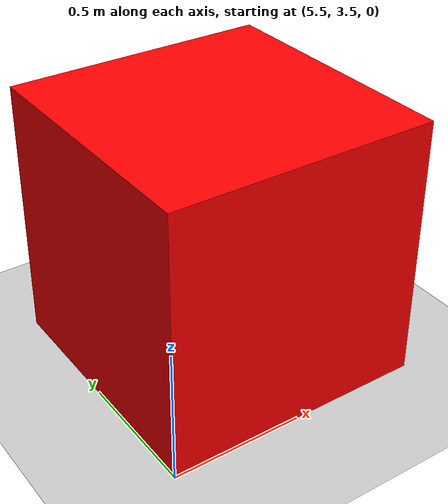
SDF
<?xml version="1.0" encoding="UTF-8"?>
<sdf version="1.9">
  <world name="red_block_search">
    <physics type="ode">
      <max_step_size>0.004</max_step_size>
      <real_time_factor>1.0</real_time_factor>
      <real_time_update_rate>250</real_time_update_rate>
    </physics>
    <gravity>0 0 -9.8</gravity>
    <magnetic_field>6e-06 2.3e-05 -4.2e-05</magnetic_field>
    <atmosphere type="adiabatic"/>
    <scene>
      <grid>true</grid>
      <ambient>0.45 0.45 0.45 1</ambient>
      <background>0.72 0.74 0.76 1</background>
      <shadows>true</shadows>
    </scene>
    <model name="ground_plane">
      <static>true</static>
      <link name="link">
        <collision name="collision">
          <geometry>
            <plane>
              <normal>0 0 1</normal>
              <size>1 1</size>
            </plane>
          </geometry>
        </collision>
        <visual name="visual">
          <geometry>
            <plane>
              <normal>0 0 1</normal>
              <size>80 80</size>
            </plane>
          </geometry>
          <material>
            <ambient>0.8 0.8 0.8 1</ambient>
            <diffuse>0.8 0.8 0.8 1</diffuse>
            <specular>0.5 0.5 0.5 1</specular>
          </material>
        </visual>
      </link>
    </model>
    <include>
      <uri>model://red_block</uri>
      <pose>6 4 0.5 0 0 0</pose>
    </include>
    <light name="sun" type="directional">
      <pose>0 0 30 0 0 0</pose>
      <cast_shadows>true</cast_shadows>
      <intensity>1.4</intensity>
      <direction>-0.3 0.4 -0.85</direction>
      <diffuse>0.95 0.95 0.9 1</diffuse>
      <specular>0.3 0.3 0.3 1</specular>
    </light>
  </world>
</sdf>

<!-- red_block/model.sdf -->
<sdf version="1.9">
  <model name="red_block">
    <static>true</static>
    <pose>6 4 0.5 0 0 0</pose>
    <link name="link">
      <collision name="collision">
        <geometry>
          <box>
            <size>1.0 1.0 1.0</size>
          </box>
        </geometry>
      </collision>
      <visual name="visual">
        <geometry>
          <box>
            <size>1.0 1.0 1.0</size>
          </box>
        </geometry>
        <material>
          <ambient>1 0 0 1</ambient>
          <diffuse>1 0 0 1</diffuse>
          <specular>0.2 0.05 0.05 1</specular>
          <emissive>0.15 0 0 1</emissive>
        </material>
      </visual>
    </link>
  </model>
</sdf>
